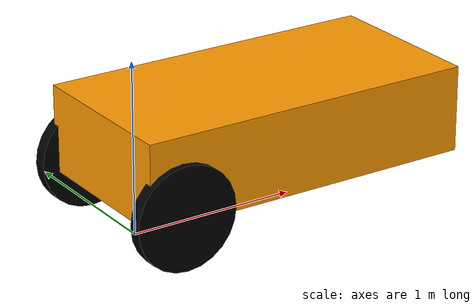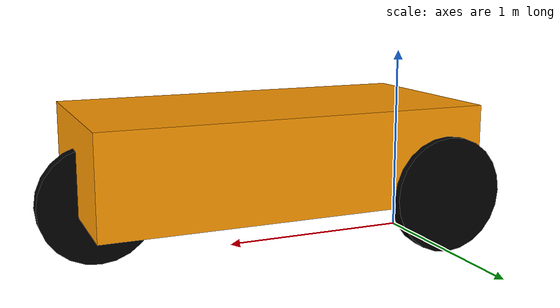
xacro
<?xml version="1.0"?>
<robot xmlns:xacro="http://www.ros.org/wiki/xacro"  name="robot">

    <xacro:include filename='robot_core_demo.xacro'/>

</robot>

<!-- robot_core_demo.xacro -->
<robot name="tricycle_drive" xmlns:xacro="http://ros.org/wiki/xacro">
  <material name="Black">
    <color rgba="0 0 0 1" />
  </material>
  <material name="Grey">
    <color rgba="0.8 0.8 0.8 1" />
  </material>
  <material name="Orange">
    <color rgba="1 0.6 0 1" />
  </material>
  <material name="White">
    <color rgba="1 1 1 1" />
  </material>

  <link name="base_link" />

  <!-- Chassis -->
  <link name="chassis">
    <collision>
      <origin xyz="0 0 0" rpy="0 0 0" />
      <geometry>
        <box size="2 1 0.5" />
      </geometry>
    </collision>

    <visual>
      <origin xyz="0 0 0" rpy="0 0 0" />
      <geometry>
        <box size="2 1 0.5" />
      </geometry>
      <material name="Orange" />
    </visual>

    <inertial>
      <origin xyz="0 0 0" rpy="0 0 0" />
      <mass value="1" />
      <inertia ixx="0.126164" ixy="0.0" ixz="0.0" iyy="0.416519" iyz="0.0" izz="0.481014" />
    </inertial>
  </link>

  <joint name="chassis_joint" type="fixed">
    <origin xyz="0.8 0 0.5" rpy="0 0 0" />
    <parent link="base_link" />
    <child link="chassis" />
  </joint>

  <!-- left wheel Link -->
  <link name="left_wheel">
    <collision>
      <geometry>
        <cylinder length="0.08" radius="0.3" />
      </geometry>
    </collision>
    <visual>
      <geometry>
        <cylinder length="0.08" radius="0.3" />
      </geometry>
      <material name="Black" />
    </visual>

    <inertial>
      <mass value="2" />
      <inertia ixx="0.145833" ixy="0.0" ixz="0.0" iyy="0.145833" iyz="0.0" izz="0.125" />
    </inertial>
  </link>

  <joint name="left_wheel_joint" type="continuous">
    <origin xyz="-0.8 0.5 -0.2" rpy="-1.57 0 0" />
    <parent link="chassis" />
    <child link="left_wheel" />
    <axis xyz="0 0 1" />
    <dynamics damping="0.2" />
  </joint>

  <!-- right wheel Link -->
  <link name="right_wheel">
    <collision>
      <geometry>
        <cylinder length="0.08" radius="0.3" />
      </geometry>
    </collision>
    <visual>
      <geometry>
        <cylinder length="0.08" radius="0.3" />
      </geometry>
      <material name="Black" />
    </visual>

    <inertial>
      <mass value="2" />
      <inertia ixx="0.145833" ixy="0.0" ixz="0.0" iyy="0.145833" iyz="0.0" izz="0.125" />
    </inertial>
  </link>

  <joint name="right_wheel_joint" type="continuous">
    <origin xyz="-0.8 -0.5 -0.2" rpy="-1.57 0 0" />
    <parent link="chassis" />
    <child link="right_wheel" />
    <axis xyz="0 0 1" />
    <dynamics damping="0.2" />
  </joint>

  <!-- Steering Link -->
  <link name="steering_link">
    <visual>
      <geometry>
        <box size="0.01 0.01 0.01" />
      </geometry>
      <material name="Black" />
    </visual>
    <inertial>
      <origin xyz="0 0 0" rpy="0 0 0" />
      <mass value="0.005" />
      <inertia ixx="0.1" ixy="0.0" ixz="0.0" iyy="0.1" iyz="0.0" izz="0.1" />
    </inertial>
  </link>

  <joint name="steering_joint" type="continuous">
    <origin xyz="0.9 0 -0.2" rpy="0 0 0" />
    <parent link="chassis" />
    <child link="steering_link" />
    <axis xyz="0 0 1" />
  </joint>

  <!-- traction wheel link -->
  <link name="wheel_front_link">
    <visual>
      <geometry>
        <cylinder length="0.08" radius="0.3" />
      </geometry>
      <material name="Black" />
    </visual>
    <inertial>
      <origin xyz="0 0 0" rpy="0 0 0" />
      <mass value="15" />
      <inertia ixx="1" ixy="0" ixz="0" iyy="1" iyz="0" izz="1" />
    </inertial>
    <collision>
      <geometry>
        <cylinder length="0.08" radius="0.3" />
      </geometry>
    </collision>
  </link>

  <joint name="traction_joint" type="continuous">
    <parent link="steering_link" />
    <child link="wheel_front_link" />
    <origin xyz="0 0 0" rpy="-1.57 1.57 0" />
    <axis xyz="0 0 1" />
  </joint>

  <ros2_control name="GazeboSystem" type="system">
    <hardware>
      <plugin>gazebo_ros2_control/GazeboSystem</plugin>
    </hardware>
    <joint name="steering_joint">
      <command_interface name="position" />
      <state_interface name="position" />
    </joint>
    <joint name="traction_joint">
      <command_interface name="velocity" />
      <state_interface name="velocity" />
      <state_interface name="position" />
    </joint>
  </ros2_control>

  <gazebo>
    <plugin filename="libgazebo_ros2_control.so" name="gazebo_ros2_control">
      <parameters>$(find brsd_bot)/config/tricycle_drive_controller.yaml</parameters>
    </plugin>
  </gazebo>

</robot>
